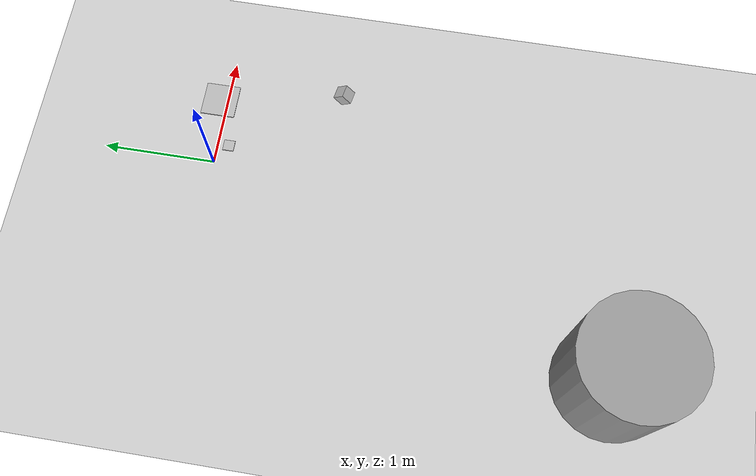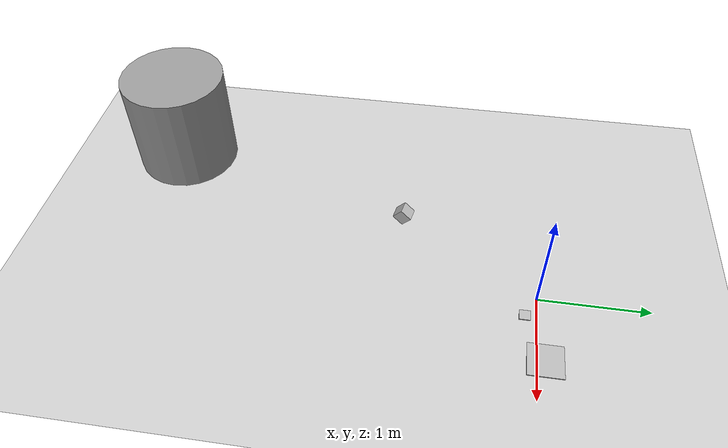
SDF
<sdf version="1.6">
 <world name="default">
  <light name="sun" type="directional">
   <pose>0 0 10 0 -0 0</pose>
   <diffuse>0.8 0.8 0.8 1</diffuse>
   <specular>0.2 0.2 0.2 1</specular>
   <attenuation>
    <range>1000</range>
    <constant>0.9</constant>
    <linear>0.01</linear>
    <quadratic>0.001</quadratic>
   </attenuation>
   <direction>-0.5 0.1 -0.9</direction>
  </light>
  <model name="ground_plane">
   <static>1</static>
   <link name="link">
    <collision name="collision">
     <geometry><plane><normal>0 0 1</normal><size>100 100</size></plane></geometry>
     <surface>
      <contact><collide_bitmask>65535</collide_bitmask></contact>
      <friction><ode><mu>100</mu><mu2>50</mu2></ode></friction>
     </surface>
    </collision>
    <visual name="visual">
     <cast_shadows>0</cast_shadows>
     <geometry><plane><normal>0 0 1</normal><size>100 100</size></plane></geometry>
     <material>
      <script><uri>file://media/materials/scripts/gazebo.material</uri><name>Gazebo/Grey</name></script>
     </material>
    </visual>
   </link>
  </model>
  <gravity>0 0 -9.8</gravity>
  <magnetic_field>6e-06 2.3e-05 -4.2e-05</magnetic_field>
  <atmosphere type="adiabatic"/>
  <physics name="default_physics" default="0" type="ode">
   <max_step_size>0.001</max_step_size>
   <real_time_factor>1</real_time_factor>
   <real_time_update_rate>1000</real_time_update_rate>
  </physics>
  <scene><ambient>0.4 0.4 0.4 1</ambient><background>0.7 0.7 0.7 1</background><shadows>1</shadows></scene>
  <audio><device>default</device></audio>
  <spherical_coordinates>
   <surface_model>EARTH_WGS84</surface_model>
   <latitude_deg>0</latitude_deg>
   <longitude_deg>0</longitude_deg>
   <elevation>0</elevation>
   <heading_deg>0</heading_deg>
  </spherical_coordinates>
  <model name="ar_mark">
   <static>1</static>
   <link name="link">
    <collision name="collision"><geometry><box><size>0.1 0.1 0.01</size></box></geometry></collision>
    <visual name="visual">
     <cast_shadows>0</cast_shadows>
     <geometry><box><size>0.1 0.1 0.01</size></box></geometry>
     <material>
      <script>
       <uri>model://aruco_marker10/materials/scripts</uri>
       <uri>model://aruco_marker10/materials/textures</uri>
       <name>ar/mark10</name>
      </script>
     </material>
    </visual>
   </link>
   <pose>0.180525 -0.100063 0 0 -0 0</pose>
  </model>
  <model name="unit_cylinder_0">
   <pose>-1.4194 -3.66566 0.499992 -3e-06 3e-06 0</pose>
   <link name="link">
    <inertial>
     <mass>1</mass>
     <inertia><ixx>0.145833</ixx><ixy>0</ixy><ixz>0</ixz><iyy>0.145833</iyy><iyz>0</iyz><izz>0.125</izz></inertia>
    </inertial>
    <collision name="collision">
     <geometry><cylinder><radius>0.5</radius><length>1</length></cylinder></geometry>
    </collision>
    <visual name="visual">
     <geometry><cylinder><radius>0.5</radius><length>1</length></cylinder></geometry>
     <material>
      <script><name>Gazebo/Grey</name><uri>file://media/materials/scripts/gazebo.material</uri></script>
     </material>
    </visual>
   </link>
  </model>
  <model name="camera_0">
   <pose>0.229545 -1.18587 1.17264 1.2e-05 0.721964 1.38702</pose>
   <link name="camera_0::link">
    <inertial>
     <mass>0.1</mass>
     <inertia>
      <ixx>0.000166667</ixx>
      <iyy>0.000166667</iyy>
      <izz>0.000166667</izz>
      <ixy>0</ixy>
      <ixz>0</ixz>
      <iyz>0</iyz>
     </inertia>
    </inertial>
    <collision name="collision"><geometry><box><size>0.1 0.1 0.1</size></box></geometry></collision>
    <visual name="visual"><geometry><box><size>0.1 0.1 0.1</size></box></geometry></visual>
    <sensor name="camera" type="camera">
     <camera name="__default__">
      <horizontal_fov>1.047</horizontal_fov>
      <image><width>640</width><height>480</height></image>
      <clip><near>0.1</near><far>100</far></clip>
     </camera>
     <always_on>1</always_on>
     <update_rate>30</update_rate>
     <visualize>1</visualize>
    </sensor>
    <gravity>0</gravity>
   </link>
  </model>
  <model name="ar_diamond_0">
   <static>1</static>
   <pose>0.619463 0.072396 0.005 0 -0 0</pose>
   <link name="link">
    <collision name="collision"><geometry><box><size>0.3125 0.3125 0.01</size></box></geometry></collision>
    <visual name="visual">
     <cast_shadows>0</cast_shadows>
     <geometry><box><size>0.3125 0.3125 0.01</size></box></geometry>
     <material>
      <script>
       <uri>model://aruco_diamond1234/materials/scripts</uri>
       <uri>model://aruco_diamond1234/materials/textures</uri>
       <name>ar/diamond1</name>
      </script>
     </material>
    </visual>
   </link>
  </model>
 </world>
</sdf>
